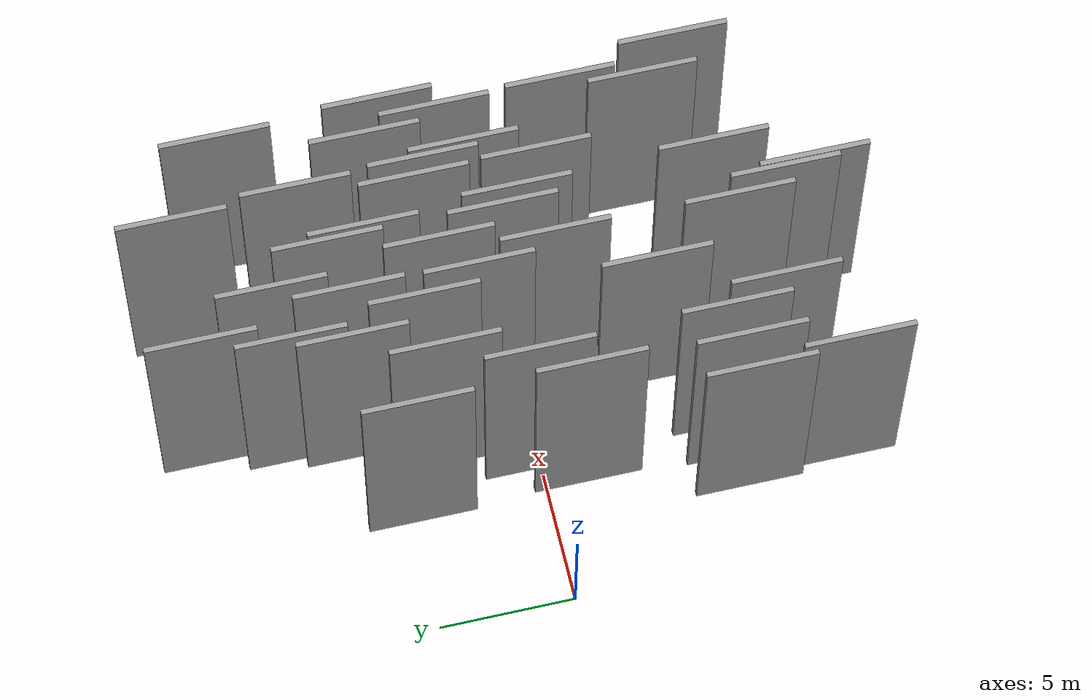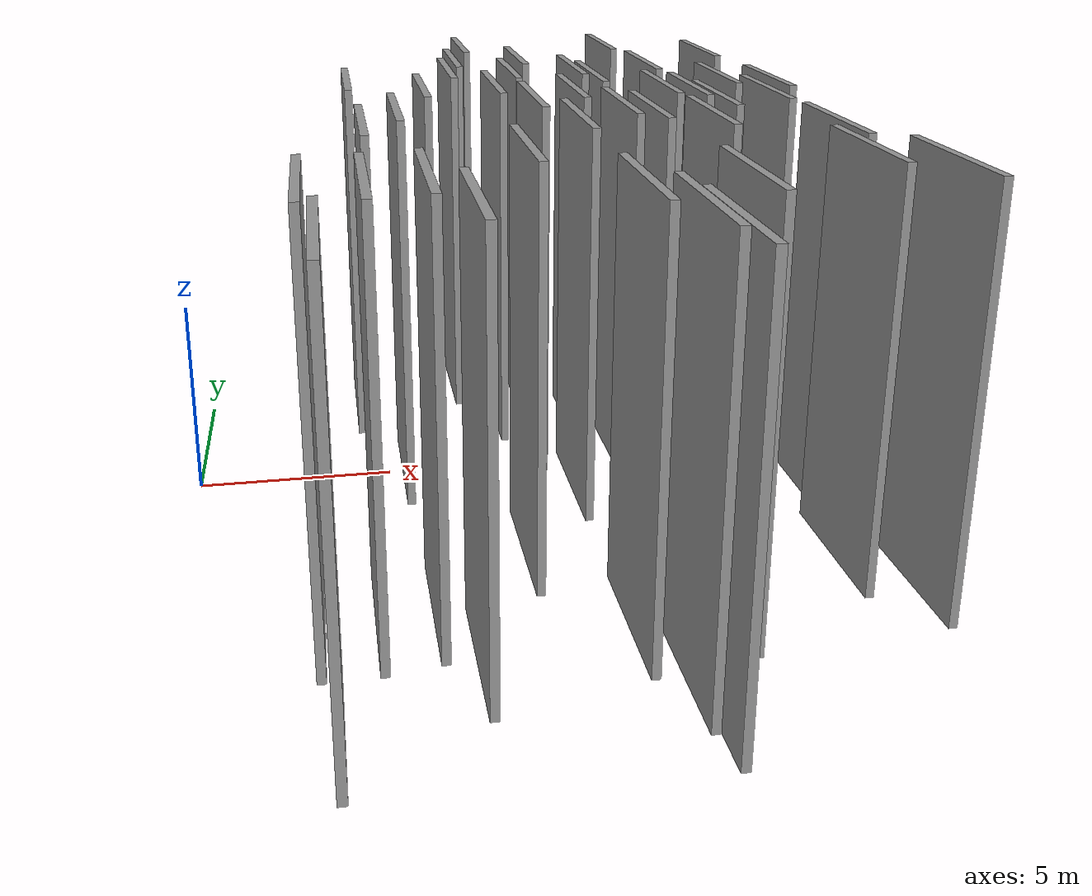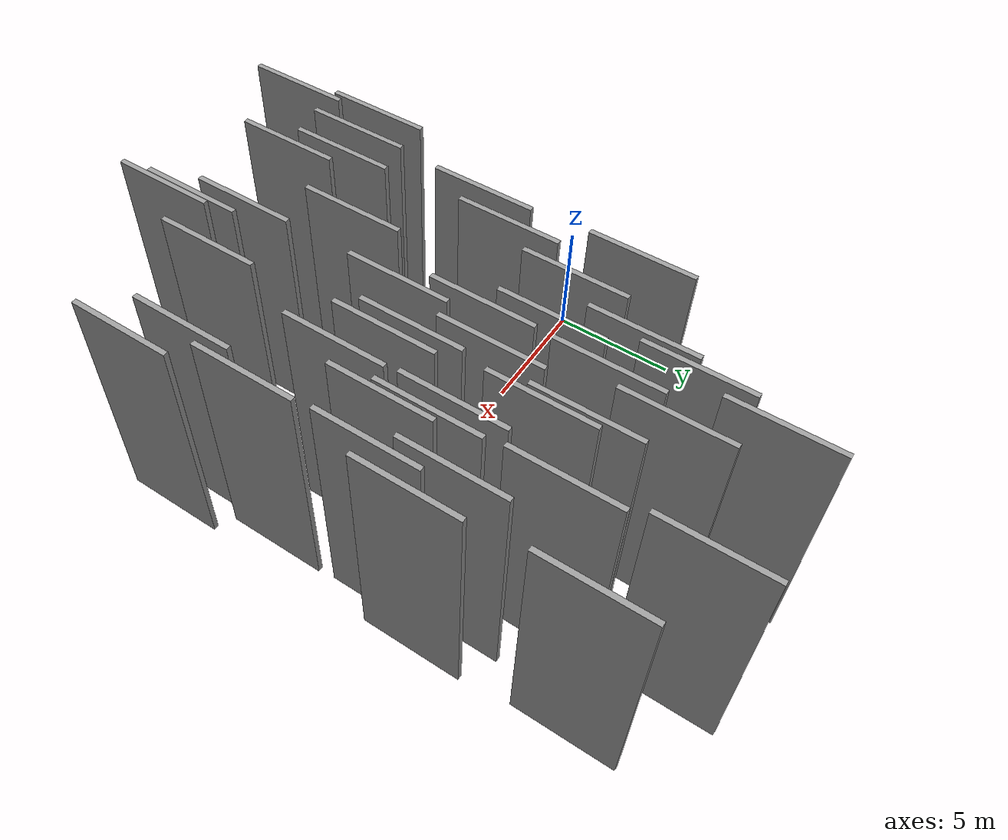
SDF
<sdf version="1.6">
 <world name="default">
  <scene>
   <sky><clouds><speed>12</speed></clouds></sky>
   <ambient>0.4 0.4 0.4 1</ambient>
   <background>0.7 0.7 0.7 1</background>
   <shadows>1</shadows>
  </scene>
  <gravity>0 0 -9.8066</gravity>
  <magnetic_field>6e-06 2.3e-05 -4.2e-05</magnetic_field>
  <physics default="0" name="default_physics" type="ode">
   <ode>
    <solver>
     <type>quick</type>
     <iters>10</iters>
     <sor>1.0</sor>
     <use_dynamic_moi_rescaling>0</use_dynamic_moi_rescaling>
    </solver>
    <constraints>
     <cfm>0</cfm>
     <erp>0.2</erp>
     <contact_max_correcting_vel>100</contact_max_correcting_vel>
     <contact_surface_layer>0.001</contact_surface_layer>
    </constraints>
   </ode>
   <max_step_size>0.004</max_step_size>
   <real_time_factor>1</real_time_factor>
   <real_time_update_rate>250</real_time_update_rate>
  </physics>
  <light name="sun" type="directional">
   <pose>0 0 10 0 0 0</pose>
   <diffuse>0.8 0.8 0.8 1</diffuse>
   <specular>0.2 0.2 0.2 1</specular>
   <attenuation>
    <range>1000</range>
    <constant>0.9</constant>
    <linear>0.01</linear>
    <quadratic>0.001</quadratic>
   </attenuation>
   <direction>-0.5 0.1 -0.9</direction>
  </light>
  <model name="grey_wall_1">
   <static>1</static>
   <pose>3.3832 -10.8072 0.0 0.000000 0.000000 1.570796</pose>
   <link name="link">
    <pose>0 0 5.00 0 0 0</pose>
    <collision name="collision"><geometry><box><size>4.00 0.2 10.00</size></box></geometry></collision>
    <visual name="visual">
     <cast_shadows>0</cast_shadows>
     <geometry><box><size>4.00 0.2 10.00</size></box></geometry>
     <material>
      <script>
       <uri>model://grey_wall/materials/scripts</uri>
       <uri>model://grey_wall/materials/textures</uri>
       <name>vrc/grey_wall</name>
      </script>
     </material>
    </visual>
   </link>
  </model>
  <model name="grey_wall_2">
   <static>1</static>
   <pose>6.3397 -8.9448 0.0 0.000000 0.000000 1.570796</pose>
   <link name="link">
    <pose>0 0 5.00 0 0 0</pose>
    <collision name="collision"><geometry><box><size>4.00 0.2 10.00</size></box></geometry></collision>
    <visual name="visual">
     <cast_shadows>0</cast_shadows>
     <geometry><box><size>4.00 0.2 10.00</size></box></geometry>
     <material>
      <script>
       <uri>model://grey_wall/materials/scripts</uri>
       <uri>model://grey_wall/materials/textures</uri>
       <name>vrc/grey_wall</name>
      </script>
     </material>
    </visual>
   </link>
  </model>
  <model name="grey_wall_3">
   <static>1</static>
   <pose>11.8246 -0.5661 0.0 0.000000 0.000000 1.570796</pose>
   <link name="link">
    <pose>0 0 5.00 0 0 0</pose>
    <collision name="collision"><geometry><box><size>4.00 0.2 10.00</size></box></geometry></collision>
    <visual name="visual">
     <cast_shadows>0</cast_shadows>
     <geometry><box><size>4.00 0.2 10.00</size></box></geometry>
     <material>
      <script>
       <uri>model://grey_wall/materials/scripts</uri>
       <uri>model://grey_wall/materials/textures</uri>
       <name>vrc/grey_wall</name>
      </script>
     </material>
    </visual>
   </link>
  </model>
  <model name="grey_wall_4">
   <static>1</static>
   <pose>4.5400 -1.5496 0.0 0.000000 0.000000 1.570796</pose>
   <link name="link">
    <pose>0 0 5.00 0 0 0</pose>
    <collision name="collision"><geometry><box><size>4.00 0.2 10.00</size></box></geometry></collision>
    <visual name="visual">
     <cast_shadows>0</cast_shadows>
     <geometry><box><size>4.00 0.2 10.00</size></box></geometry>
     <material>
      <script>
       <uri>model://grey_wall/materials/scripts</uri>
       <uri>model://grey_wall/materials/textures</uri>
       <name>vrc/grey_wall</name>
      </script>
     </material>
    </visual>
   </link>
  </model>
  <model name="grey_wall_5">
   <static>1</static>
   <pose>15.6263 1.5800 0.0 0.000000 0.000000 1.570796</pose>
   <link name="link">
    <pose>0 0 5.00 0 0 0</pose>
    <collision name="collision"><geometry><box><size>4.00 0.2 10.00</size></box></geometry></collision>
    <visual name="visual">
     <cast_shadows>0</cast_shadows>
     <geometry><box><size>4.00 0.2 10.00</size></box></geometry>
     <material>
      <script>
       <uri>model://grey_wall/materials/scripts</uri>
       <uri>model://grey_wall/materials/textures</uri>
       <name>vrc/grey_wall</name>
      </script>
     </material>
    </visual>
   </link>
  </model>
  <model name="grey_wall_6">
   <static>1</static>
   <pose>13.2290 11.5430 0.0 0.000000 0.000000 1.570796</pose>
   <link name="link">
    <pose>0 0 5.00 0 0 0</pose>
    <collision name="collision"><geometry><box><size>4.00 0.2 10.00</size></box></geometry></collision>
    <visual name="visual">
     <cast_shadows>0</cast_shadows>
     <geometry><box><size>4.00 0.2 10.00</size></box></geometry>
     <material>
      <script>
       <uri>model://grey_wall/materials/scripts</uri>
       <uri>model://grey_wall/materials/textures</uri>
       <name>vrc/grey_wall</name>
      </script>
     </material>
    </visual>
   </link>
  </model>
  <model name="grey_wall_7">
   <static>1</static>
   <pose>11.2349 0.0759 0.0 0.000000 0.000000 1.570796</pose>
   <link name="link">
    <pose>0 0 5.00 0 0 0</pose>
    <collision name="collision"><geometry><box><size>4.00 0.2 10.00</size></box></geometry></collision>
    <visual name="visual">
     <cast_shadows>0</cast_shadows>
     <geometry><box><size>4.00 0.2 10.00</size></box></geometry>
     <material>
      <script>
       <uri>model://grey_wall/materials/scripts</uri>
       <uri>model://grey_wall/materials/textures</uri>
       <name>vrc/grey_wall</name>
      </script>
     </material>
    </visual>
   </link>
  </model>
  <model name="grey_wall_8">
   <static>1</static>
   <pose>10.4423 2.5509 0.0 0.000000 0.000000 1.570796</pose>
   <link name="link">
    <pose>0 0 5.00 0 0 0</pose>
    <collision name="collision"><geometry><box><size>4.00 0.2 10.00</size></box></geometry></collision>
    <visual name="visual">
     <cast_shadows>0</cast_shadows>
     <geometry><box><size>4.00 0.2 10.00</size></box></geometry>
     <material>
      <script>
       <uri>model://grey_wall/materials/scripts</uri>
       <uri>model://grey_wall/materials/textures</uri>
       <name>vrc/grey_wall</name>
      </script>
     </material>
    </visual>
   </link>
  </model>
  <model name="grey_wall_9">
   <static>1</static>
   <pose>13.7004 2.4150 0.0 0.000000 0.000000 1.570796</pose>
   <link name="link">
    <pose>0 0 5.00 0 0 0</pose>
    <collision name="collision"><geometry><box><size>4.00 0.2 10.00</size></box></geometry></collision>
    <visual name="visual">
     <cast_shadows>0</cast_shadows>
     <geometry><box><size>4.00 0.2 10.00</size></box></geometry>
     <material>
      <script>
       <uri>model://grey_wall/materials/scripts</uri>
       <uri>model://grey_wall/materials/textures</uri>
       <name>vrc/grey_wall</name>
      </script>
     </material>
    </visual>
   </link>
  </model>
  <model name="grey_wall_10">
   <static>1</static>
   <pose>13.1162 -1.5548 0.0 0.000000 0.000000 1.570796</pose>
   <link name="link">
    <pose>0 0 5.00 0 0 0</pose>
    <collision name="collision"><geometry><box><size>4.00 0.2 10.00</size></box></geometry></collision>
    <visual name="visual">
     <cast_shadows>0</cast_shadows>
     <geometry><box><size>4.00 0.2 10.00</size></box></geometry>
     <material>
      <script>
       <uri>model://grey_wall/materials/scripts</uri>
       <uri>model://grey_wall/materials/textures</uri>
       <name>vrc/grey_wall</name>
      </script>
     </material>
    </visual>
   </link>
  </model>
  <model name="grey_wall_11">
   <static>1</static>
   <pose>12.0513 -7.7593 0.0 0.000000 0.000000 1.570796</pose>
   <link name="link">
    <pose>0 0 5.00 0 0 0</pose>
    <collision name="collision"><geometry><box><size>4.00 0.2 10.00</size></box></geometry></collision>
    <visual name="visual">
     <cast_shadows>0</cast_shadows>
     <geometry><box><size>4.00 0.2 10.00</size></box></geometry>
     <material>
      <script>
       <uri>model://grey_wall/materials/scripts</uri>
       <uri>model://grey_wall/materials/textures</uri>
       <name>vrc/grey_wall</name>
      </script>
     </material>
    </visual>
   </link>
  </model>
  <model name="grey_wall_12">
   <static>1</static>
   <pose>15.2707 -5.9594 0.0 0.000000 0.000000 1.570796</pose>
   <link name="link">
    <pose>0 0 5.00 0 0 0</pose>
    <collision name="collision"><geometry><box><size>4.00 0.2 10.00</size></box></geometry></collision>
    <visual name="visual">
     <cast_shadows>0</cast_shadows>
     <geometry><box><size>4.00 0.2 10.00</size></box></geometry>
     <material>
      <script>
       <uri>model://grey_wall/materials/scripts</uri>
       <uri>model://grey_wall/materials/textures</uri>
       <name>vrc/grey_wall</name>
      </script>
     </material>
    </visual>
   </link>
  </model>
  <model name="grey_wall_13">
   <static>1</static>
   <pose>7.9908 -4.7197 0.0 0.000000 0.000000 1.570796</pose>
   <link name="link">
    <pose>0 0 5.00 0 0 0</pose>
    <collision name="collision"><geometry><box><size>4.00 0.2 10.00</size></box></geometry></collision>
    <visual name="visual">
     <cast_shadows>0</cast_shadows>
     <geometry><box><size>4.00 0.2 10.00</size></box></geometry>
     <material>
      <script>
       <uri>model://grey_wall/materials/scripts</uri>
       <uri>model://grey_wall/materials/textures</uri>
       <name>vrc/grey_wall</name>
      </script>
     </material>
    </visual>
   </link>
  </model>
  <model name="grey_wall_14">
   <static>1</static>
   <pose>16.5486 -7.3850 0.0 0.000000 0.000000 1.570796</pose>
   <link name="link">
    <pose>0 0 5.00 0 0 0</pose>
    <collision name="collision"><geometry><box><size>4.00 0.2 10.00</size></box></geometry></collision>
    <visual name="visual">
     <cast_shadows>0</cast_shadows>
     <geometry><box><size>4.00 0.2 10.00</size></box></geometry>
     <material>
      <script>
       <uri>model://grey_wall/materials/scripts</uri>
       <uri>model://grey_wall/materials/textures</uri>
       <name>vrc/grey_wall</name>
      </script>
     </material>
    </visual>
   </link>
  </model>
  <model name="grey_wall_15">
   <static>1</static>
   <pose>4.3701 4.6510 0.0 0.000000 0.000000 1.570796</pose>
   <link name="link">
    <pose>0 0 5.00 0 0 0</pose>
    <collision name="collision"><geometry><box><size>4.00 0.2 10.00</size></box></geometry></collision>
    <visual name="visual">
     <cast_shadows>0</cast_shadows>
     <geometry><box><size>4.00 0.2 10.00</size></box></geometry>
     <material>
      <script>
       <uri>model://grey_wall/materials/scripts</uri>
       <uri>model://grey_wall/materials/textures</uri>
       <name>vrc/grey_wall</name>
      </script>
     </material>
    </visual>
   </link>
  </model>
  <model name="grey_wall_16">
   <static>1</static>
   <pose>4.3443 -7.2147 0.0 0.000000 0.000000 1.570796</pose>
   <link name="link">
    <pose>0 0 5.00 0 0 0</pose>
    <collision name="collision"><geometry><box><size>4.00 0.2 10.00</size></box></geometry></collision>
    <visual name="visual">
     <cast_shadows>0</cast_shadows>
     <geometry><box><size>4.00 0.2 10.00</size></box></geometry>
     <material>
      <script>
       <uri>model://grey_wall/materials/scripts</uri>
       <uri>model://grey_wall/materials/textures</uri>
       <name>vrc/grey_wall</name>
      </script>
     </material>
    </visual>
   </link>
  </model>
  <model name="grey_wall_17">
   <static>1</static>
   <pose>11.4988 5.0331 0.0 0.000000 0.000000 1.570796</pose>
   <link name="link">
    <pose>0 0 5.00 0 0 0</pose>
    <collision name="collision"><geometry><box><size>4.00 0.2 10.00</size></box></geometry></collision>
    <visual name="visual">
     <cast_shadows>0</cast_shadows>
     <geometry><box><size>4.00 0.2 10.00</size></box></geometry>
     <material>
      <script>
       <uri>model://grey_wall/materials/scripts</uri>
       <uri>model://grey_wall/materials/textures</uri>
       <name>vrc/grey_wall</name>
      </script>
     </material>
    </visual>
   </link>
  </model>
  <model name="grey_wall_18">
   <static>1</static>
   <pose>15.0743 4.2230 0.0 0.000000 0.000000 1.570796</pose>
   <link name="link">
    <pose>0 0 5.00 0 0 0</pose>
    <collision name="collision"><geometry><box><size>4.00 0.2 10.00</size></box></geometry></collision>
    <visual name="visual">
     <cast_shadows>0</cast_shadows>
     <geometry><box><size>4.00 0.2 10.00</size></box></geometry>
     <material>
      <script>
       <uri>model://grey_wall/materials/scripts</uri>
       <uri>model://grey_wall/materials/textures</uri>
       <name>vrc/grey_wall</name>
      </script>
     </material>
    </visual>
   </link>
  </model>
  <model name="grey_wall_19">
   <static>1</static>
   <pose>13.9900 0.8796 0.0 0.000000 0.000000 1.570796</pose>
   <link name="link">
    <pose>0 0 5.00 0 0 0</pose>
    <collision name="collision"><geometry><box><size>4.00 0.2 10.00</size></box></geometry></collision>
    <visual name="visual">
     <cast_shadows>0</cast_shadows>
     <geometry><box><size>4.00 0.2 10.00</size></box></geometry>
     <material>
      <script>
       <uri>model://grey_wall/materials/scripts</uri>
       <uri>model://grey_wall/materials/textures</uri>
       <name>vrc/grey_wall</name>
      </script>
     </material>
    </visual>
   </link>
  </model>
  <model name="grey_wall_20">
   <static>1</static>
   <pose>3.0623 -7.2333 0.0 0.000000 0.000000 1.570796</pose>
   <link name="link">
    <pose>0 0 5.00 0 0 0</pose>
    <collision name="collision"><geometry><box><size>4.00 0.2 10.00</size></box></geometry></collision>
    <visual name="visual">
     <cast_shadows>0</cast_shadows>
     <geometry><box><size>4.00 0.2 10.00</size></box></geometry>
     <material>
      <script>
       <uri>model://grey_wall/materials/scripts</uri>
       <uri>model://grey_wall/materials/textures</uri>
       <name>vrc/grey_wall</name>
      </script>
     </material>
    </visual>
   </link>
  </model>
  <model name="grey_wall_21">
   <static>1</static>
   <pose>9.1421 1.3990 0.0 0.000000 0.000000 1.570796</pose>
   <link name="link">
    <pose>0 0 5.00 0 0 0</pose>
    <collision name="collision"><geometry><box><size>4.00 0.2 10.00</size></box></geometry></collision>
    <visual name="visual">
     <cast_shadows>0</cast_shadows>
     <geometry><box><size>4.00 0.2 10.00</size></box></geometry>
     <material>
      <script>
       <uri>model://grey_wall/materials/scripts</uri>
       <uri>model://grey_wall/materials/textures</uri>
       <name>vrc/grey_wall</name>
      </script>
     </material>
    </visual>
   </link>
  </model>
  <model name="grey_wall_22">
   <static>1</static>
   <pose>8.3918 3.5246 0.0 0.000000 0.000000 1.570796</pose>
   <link name="link">
    <pose>0 0 5.00 0 0 0</pose>
    <collision name="collision"><geometry><box><size>4.00 0.2 10.00</size></box></geometry></collision>
    <visual name="visual">
     <cast_shadows>0</cast_shadows>
     <geometry><box><size>4.00 0.2 10.00</size></box></geometry>
     <material>
      <script>
       <uri>model://grey_wall/materials/scripts</uri>
       <uri>model://grey_wall/materials/textures</uri>
       <name>vrc/grey_wall</name>
      </script>
     </material>
    </visual>
   </link>
  </model>
  <model name="grey_wall_23">
   <static>1</static>
   <pose>11.1994 6.3919 0.0 0.000000 0.000000 1.570796</pose>
   <link name="link">
    <pose>0 0 5.00 0 0 0</pose>
    <collision name="collision"><geometry><box><size>4.00 0.2 10.00</size></box></geometry></collision>
    <visual name="visual">
     <cast_shadows>0</cast_shadows>
     <geometry><box><size>4.00 0.2 10.00</size></box></geometry>
     <material>
      <script>
       <uri>model://grey_wall/materials/scripts</uri>
       <uri>model://grey_wall/materials/textures</uri>
       <name>vrc/grey_wall</name>
      </script>
     </material>
    </visual>
   </link>
  </model>
  <model name="grey_wall_24">
   <static>1</static>
   <pose>5.4449 0.0748 0.0 0.000000 0.000000 1.570796</pose>
   <link name="link">
    <pose>0 0 5.00 0 0 0</pose>
    <collision name="collision"><geometry><box><size>4.00 0.2 10.00</size></box></geometry></collision>
    <visual name="visual">
     <cast_shadows>0</cast_shadows>
     <geometry><box><size>4.00 0.2 10.00</size></box></geometry>
     <material>
      <script>
       <uri>model://grey_wall/materials/scripts</uri>
       <uri>model://grey_wall/materials/textures</uri>
       <name>vrc/grey_wall</name>
      </script>
     </material>
    </visual>
   </link>
  </model>
  <model name="grey_wall_25">
   <static>1</static>
   <pose>8.3574 11.4528 0.0 0.000000 0.000000 1.570796</pose>
   <link name="link">
    <pose>0 0 5.00 0 0 0</pose>
    <collision name="collision"><geometry><box><size>4.00 0.2 10.00</size></box></geometry></collision>
    <visual name="visual">
     <cast_shadows>0</cast_shadows>
     <geometry><box><size>4.00 0.2 10.00</size></box></geometry>
     <material>
      <script>
       <uri>model://grey_wall/materials/scripts</uri>
       <uri>model://grey_wall/materials/textures</uri>
       <name>vrc/grey_wall</name>
      </script>
     </material>
    </visual>
   </link>
  </model>
  <model name="grey_wall_26">
   <static>1</static>
   <pose>16.1052 9.4257 0.0 0.000000 0.000000 1.570796</pose>
   <link name="link">
    <pose>0 0 5.00 0 0 0</pose>
    <collision name="collision"><geometry><box><size>4.00 0.2 10.00</size></box></geometry></collision>
    <visual name="visual">
     <cast_shadows>0</cast_shadows>
     <geometry><box><size>4.00 0.2 10.00</size></box></geometry>
     <material>
      <script>
       <uri>model://grey_wall/materials/scripts</uri>
       <uri>model://grey_wall/materials/textures</uri>
       <name>vrc/grey_wall</name>
      </script>
     </material>
    </visual>
   </link>
  </model>
  <model name="grey_wall_27">
   <static>1</static>
   <pose>9.2094 6.0366 0.0 0.000000 0.000000 1.570796</pose>
   <link name="link">
    <pose>0 0 5.00 0 0 0</pose>
    <collision name="collision"><geometry><box><size>4.00 0.2 10.00</size></box></geometry></collision>
    <visual name="visual">
     <cast_shadows>0</cast_shadows>
     <geometry><box><size>4.00 0.2 10.00</size></box></geometry>
     <material>
      <script>
       <uri>model://grey_wall/materials/scripts</uri>
       <uri>model://grey_wall/materials/textures</uri>
       <name>vrc/grey_wall</name>
      </script>
     </material>
    </visual>
   </link>
  </model>
  <model name="grey_wall_28">
   <static>1</static>
   <pose>15.7316 -3.0404 0.0 0.000000 0.000000 1.570796</pose>
   <link name="link">
    <pose>0 0 5.00 0 0 0</pose>
    <collision name="collision"><geometry><box><size>4.00 0.2 10.00</size></box></geometry></collision>
    <visual name="visual">
     <cast_shadows>0</cast_shadows>
     <geometry><box><size>4.00 0.2 10.00</size></box></geometry>
     <material>
      <script>
       <uri>model://grey_wall/materials/scripts</uri>
       <uri>model://grey_wall/materials/textures</uri>
       <name>vrc/grey_wall</name>
      </script>
     </material>
    </visual>
   </link>
  </model>
  <model name="grey_wall_29">
   <static>1</static>
   <pose>7.7758 8.3857 0.0 0.000000 0.000000 1.570796</pose>
   <link name="link">
    <pose>0 0 5.00 0 0 0</pose>
    <collision name="collision"><geometry><box><size>4.00 0.2 10.00</size></box></geometry></collision>
    <visual name="visual">
     <cast_shadows>0</cast_shadows>
     <geometry><box><size>4.00 0.2 10.00</size></box></geometry>
     <material>
      <script>
       <uri>model://grey_wall/materials/scripts</uri>
       <uri>model://grey_wall/materials/textures</uri>
       <name>vrc/grey_wall</name>
      </script>
     </material>
    </visual>
   </link>
  </model>
  <model name="grey_wall_30">
   <static>1</static>
   <pose>5.6072 -6.9901 0.0 0.000000 0.000000 1.570796</pose>
   <link name="link">
    <pose>0 0 5.00 0 0 0</pose>
    <collision name="collision"><geometry><box><size>4.00 0.2 10.00</size></box></geometry></collision>
    <visual name="visual">
     <cast_shadows>0</cast_shadows>
     <geometry><box><size>4.00 0.2 10.00</size></box></geometry>
     <material>
      <script>
       <uri>model://grey_wall/materials/scripts</uri>
       <uri>model://grey_wall/materials/textures</uri>
       <name>vrc/grey_wall</name>
      </script>
     </material>
    </visual>
   </link>
  </model>
  <model name="grey_wall_31">
   <static>1</static>
   <pose>10.4260 -9.9772 0.0 0.000000 0.000000 1.570796</pose>
   <link name="link">
    <pose>0 0 5.00 0 0 0</pose>
    <collision name="collision"><geometry><box><size>4.00 0.2 10.00</size></box></geometry></collision>
    <visual name="visual">
     <cast_shadows>0</cast_shadows>
     <geometry><box><size>4.00 0.2 10.00</size></box></geometry>
     <material>
      <script>
       <uri>model://grey_wall/materials/scripts</uri>
       <uri>model://grey_wall/materials/textures</uri>
       <name>vrc/grey_wall</name>
      </script>
     </material>
    </visual>
   </link>
  </model>
  <model name="grey_wall_32">
   <static>1</static>
   <pose>6.3708 3.2293 0.0 0.000000 0.000000 1.570796</pose>
   <link name="link">
    <pose>0 0 5.00 0 0 0</pose>
    <collision name="collision"><geometry><box><size>4.00 0.2 10.00</size></box></geometry></collision>
    <visual name="visual">
     <cast_shadows>0</cast_shadows>
     <geometry><box><size>4.00 0.2 10.00</size></box></geometry>
     <material>
      <script>
       <uri>model://grey_wall/materials/scripts</uri>
       <uri>model://grey_wall/materials/textures</uri>
       <name>vrc/grey_wall</name>
      </script>
     </material>
    </visual>
   </link>
  </model>
  <model name="grey_wall_33">
   <static>1</static>
   <pose>7.3891 6.2914 0.0 0.000000 0.000000 1.570796</pose>
   <link name="link">
    <pose>0 0 5.00 0 0 0</pose>
    <collision name="collision"><geometry><box><size>4.00 0.2 10.00</size></box></geometry></collision>
    <visual name="visual">
     <cast_shadows>0</cast_shadows>
     <geometry><box><size>4.00 0.2 10.00</size></box></geometry>
     <material>
      <script>
       <uri>model://grey_wall/materials/scripts</uri>
       <uri>model://grey_wall/materials/textures</uri>
       <name>vrc/grey_wall</name>
      </script>
     </material>
    </visual>
   </link>
  </model>
  <model name="grey_wall_34">
   <static>1</static>
   <pose>16.3634 3.5012 0.0 0.000000 0.000000 1.570796</pose>
   <link name="link">
    <pose>0 0 5.00 0 0 0</pose>
    <collision name="collision"><geometry><box><size>4.00 0.2 10.00</size></box></geometry></collision>
    <visual name="visual">
     <cast_shadows>0</cast_shadows>
     <geometry><box><size>4.00 0.2 10.00</size></box></geometry>
     <material>
      <script>
       <uri>model://grey_wall/materials/scripts</uri>
       <uri>model://grey_wall/materials/textures</uri>
       <name>vrc/grey_wall</name>
      </script>
     </material>
    </visual>
   </link>
  </model>
  <model name="grey_wall_35">
   <static>1</static>
   <pose>9.7945 -1.4836 0.0 0.000000 0.000000 1.570796</pose>
   <link name="link">
    <pose>0 0 5.00 0 0 0</pose>
    <collision name="collision"><geometry><box><size>4.00 0.2 10.00</size></box></geometry></collision>
    <visual name="visual">
     <cast_shadows>0</cast_shadows>
     <geometry><box><size>4.00 0.2 10.00</size></box></geometry>
     <material>
      <script>
       <uri>model://grey_wall/materials/scripts</uri>
       <uri>model://grey_wall/materials/textures</uri>
       <name>vrc/grey_wall</name>
      </script>
     </material>
    </visual>
   </link>
  </model>
  <model name="grey_wall_36">
   <static>1</static>
   <pose>9.8337 8.6672 0.0 0.000000 0.000000 1.570796</pose>
   <link name="link">
    <pose>0 0 5.00 0 0 0</pose>
    <collision name="collision"><geometry><box><size>4.00 0.2 10.00</size></box></geometry></collision>
    <visual name="visual">
     <cast_shadows>0</cast_shadows>
     <geometry><box><size>4.00 0.2 10.00</size></box></geometry>
     <material>
      <script>
       <uri>model://grey_wall/materials/scripts</uri>
       <uri>model://grey_wall/materials/textures</uri>
       <name>vrc/grey_wall</name>
      </script>
     </material>
    </visual>
   </link>
  </model>
  <model name="grey_wall_37">
   <static>1</static>
   <pose>13.0304 2.8880 0.0 0.000000 0.000000 1.570796</pose>
   <link name="link">
    <pose>0 0 5.00 0 0 0</pose>
    <collision name="collision"><geometry><box><size>4.00 0.2 10.00</size></box></geometry></collision>
    <visual name="visual">
     <cast_shadows>0</cast_shadows>
     <geometry><box><size>4.00 0.2 10.00</size></box></geometry>
     <material>
      <script>
       <uri>model://grey_wall/materials/scripts</uri>
       <uri>model://grey_wall/materials/textures</uri>
       <name>vrc/grey_wall</name>
      </script>
     </material>
    </visual>
   </link>
  </model>
  <model name="grey_wall_38">
   <static>1</static>
   <pose>10.6363 -11.0877 0.0 0.000000 0.000000 1.570796</pose>
   <link name="link">
    <pose>0 0 5.00 0 0 0</pose>
    <collision name="collision"><geometry><box><size>4.00 0.2 10.00</size></box></geometry></collision>
    <visual name="visual">
     <cast_shadows>0</cast_shadows>
     <geometry><box><size>4.00 0.2 10.00</size></box></geometry>
     <material>
      <script>
       <uri>model://grey_wall/materials/scripts</uri>
       <uri>model://grey_wall/materials/textures</uri>
       <name>vrc/grey_wall</name>
      </script>
     </material>
    </visual>
   </link>
  </model>
  <model name="grey_wall_39">
   <static>1</static>
   <pose>9.7470 -8.1474 0.0 0.000000 0.000000 1.570796</pose>
   <link name="link">
    <pose>0 0 5.00 0 0 0</pose>
    <collision name="collision"><geometry><box><size>4.00 0.2 10.00</size></box></geometry></collision>
    <visual name="visual">
     <cast_shadows>0</cast_shadows>
     <geometry><box><size>4.00 0.2 10.00</size></box></geometry>
     <material>
      <script>
       <uri>model://grey_wall/materials/scripts</uri>
       <uri>model://grey_wall/materials/textures</uri>
       <name>vrc/grey_wall</name>
      </script>
     </material>
    </visual>
   </link>
  </model>
  <model name="grey_wall_40">
   <static>1</static>
   <pose>13.5613 7.0439 0.0 0.000000 0.000000 1.570796</pose>
   <link name="link">
    <pose>0 0 5.00 0 0 0</pose>
    <collision name="collision"><geometry><box><size>4.00 0.2 10.00</size></box></geometry></collision>
    <visual name="visual">
     <cast_shadows>0</cast_shadows>
     <geometry><box><size>4.00 0.2 10.00</size></box></geometry>
     <material>
      <script>
       <uri>model://grey_wall/materials/scripts</uri>
       <uri>model://grey_wall/materials/textures</uri>
       <name>vrc/grey_wall</name>
      </script>
     </material>
    </visual>
   </link>
  </model>
 </world>
</sdf>
